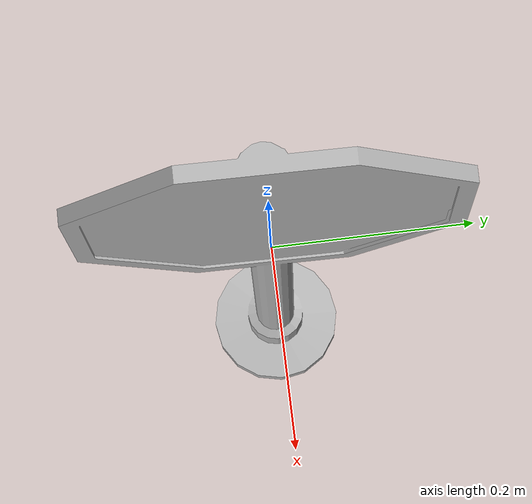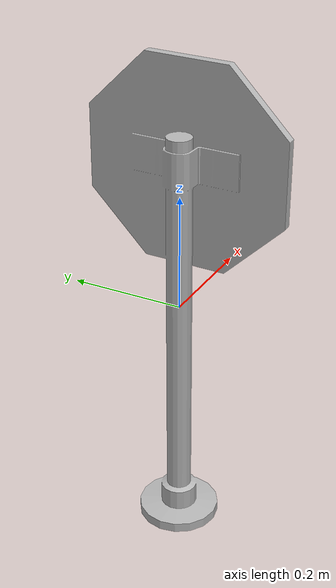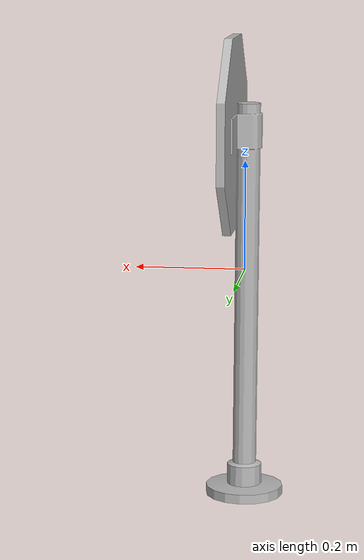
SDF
<?xml version="1.0" ?>
<sdf version="1.7">
  <model name="dur_levhasi">
    <static>false</static>
    <link name="link">

      <inertial>
        <pose>0 0 0 0 0 0</pose>
        <mass>1.0</mass>
        <inertia>
          <ixx>0.05</ixx><ixy>0</ixy><ixz>0</ixz>
          <iyy>0.05</iyy><iyz>0</iyz>
          <izz>0.05</izz>
        </inertia>
      </inertial>

      <visual name="visual">
        <pose>0 0 -0.425 0 0 0</pose>
        <geometry>
          <mesh>
            <uri>model://dur_levhasi/meshes/dur_levhasi.obj</uri>
          </mesh>
        </geometry>
      </visual>

      <collision name="collision">
        <pose>0 0 0 0 0 0</pose>
        <geometry>
          <box>
            <size>0.180564 0.316564 0.849001</size>
          </box>
        </geometry>
      </collision>

    </link>
  </model>
</sdf>
